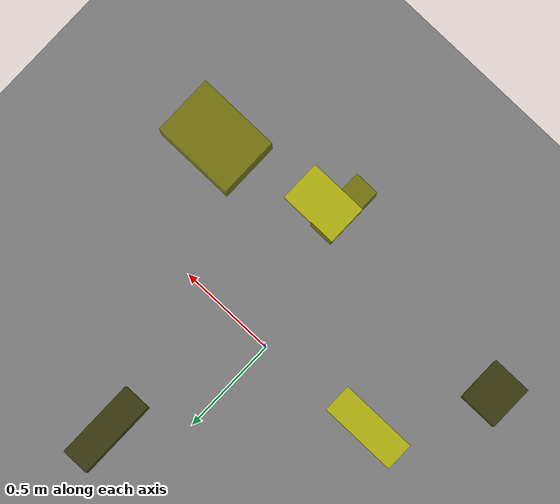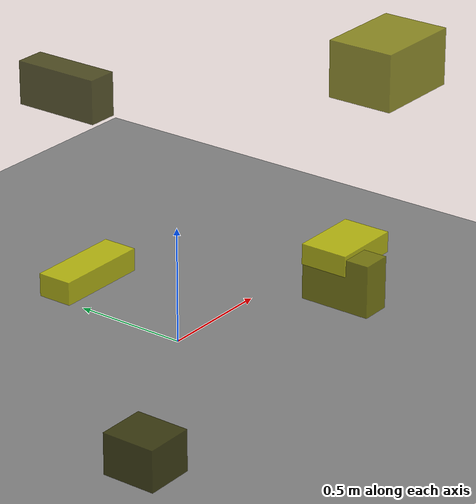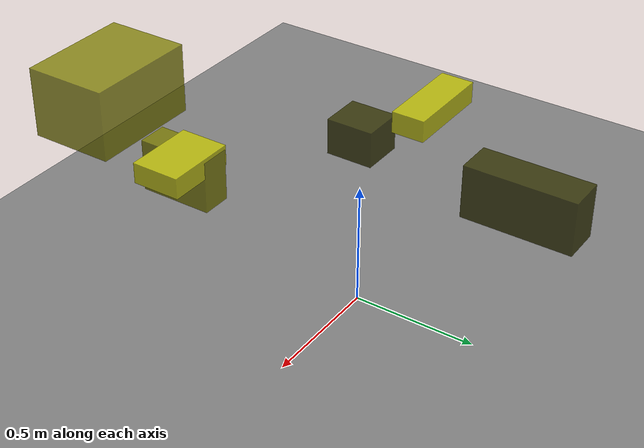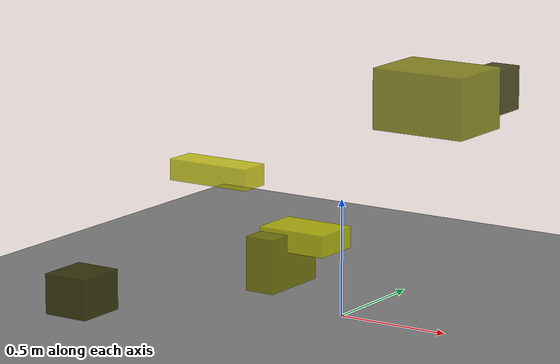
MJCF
<?xml version="1.0"?>
<mujoco model="obstacle_scene">
  <compiler angle="radian" coordinate="local"/>
  <option timestep="0.001" gravity="0 0 -9.81"/>

  <asset>
    <material name="obstacle_mat" rgba="0.8 0.8 0.0 0.8"/>
    <material name="ground_mat" rgba="0.5 0.5 0.5 1"/>
  </asset>

  <worldbody>
    <!-- Ground plane -->
    <geom name="ground" type="plane" size="3 3 0.1" material="ground_mat"/>

    <!-- Obstacles -->
    <body name="obstacle_0" pos="-0.924165 -0.574567 0.095414">
      <geom name="obs_0" type="box" size="0.102178 0.114326 0.087331" rgba="0.2 0.2 0.0 0.8"/>
    </body>
    <body name="obstacle_1" pos="0.162221 -0.693956 0.422956">
      <geom name="obs_1" type="box" size="0.062388 0.152295 0.109308" rgba="0.5 0.5 0.0 0.8"/>
    </body>
    <body name="obstacle_2" pos="0.241440 -0.643783 0.506023">
      <geom name="obs_2" type="box" size="0.147420 0.101506 0.043408" rgba="0.8 0.8 0.0 0.8"/>
    </body>
    <body name="obstacle_3" pos="0.229025 0.758621 0.849841">
      <geom name="obs_3" type="box" size="0.066994 0.196013 0.096128" rgba="0.2 0.2 0.0 0.8"/>
    </body>
    <body name="obstacle_4" pos="0.741674 -0.489409 1.091731">
      <geom name="obs_4" type="box" size="0.197476 0.144348 0.120501" rgba="0.5 0.5 0.0 0.8"/>
    </body>
    <body name="obstacle_5" pos="-0.601745 -0.044698 0.549823">
      <geom name="obs_5" type="box" size="0.193431 0.070759 0.046048" rgba="0.8 0.8 0.0 0.8"/>
    </body>
  </worldbody>
</mujoco>
